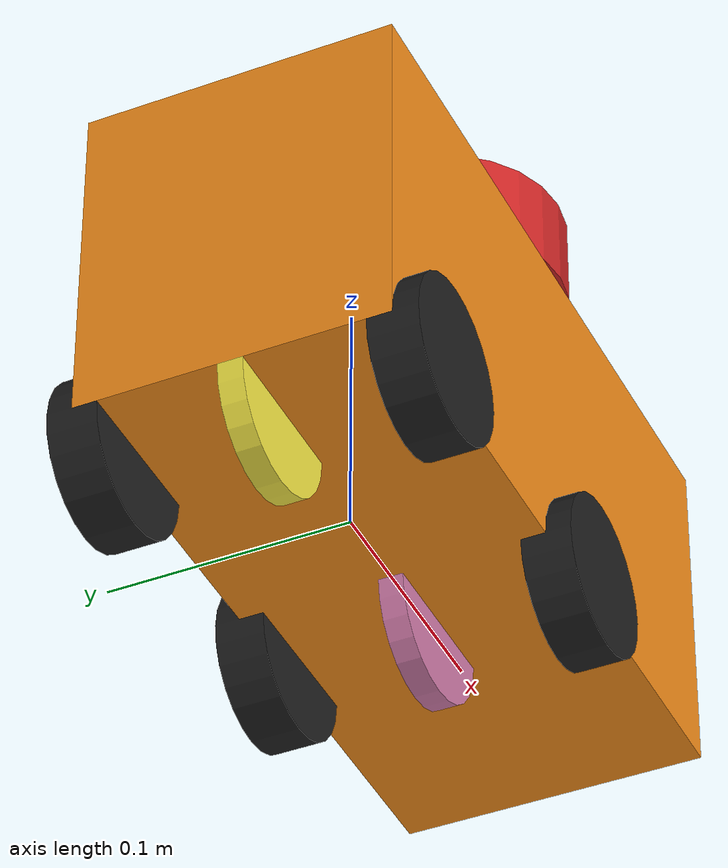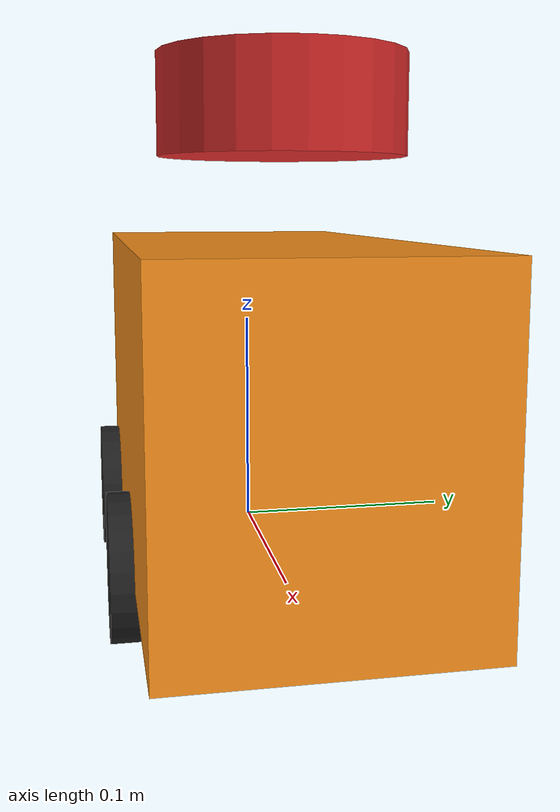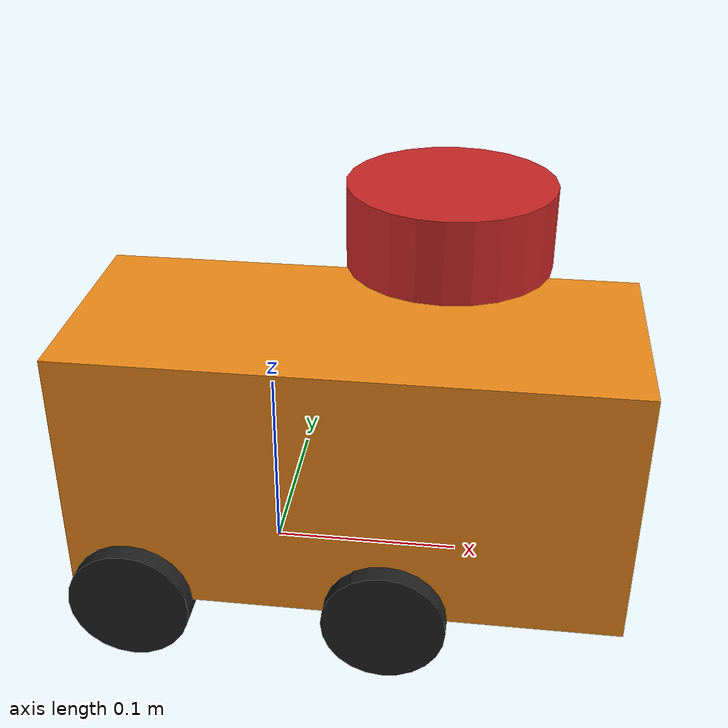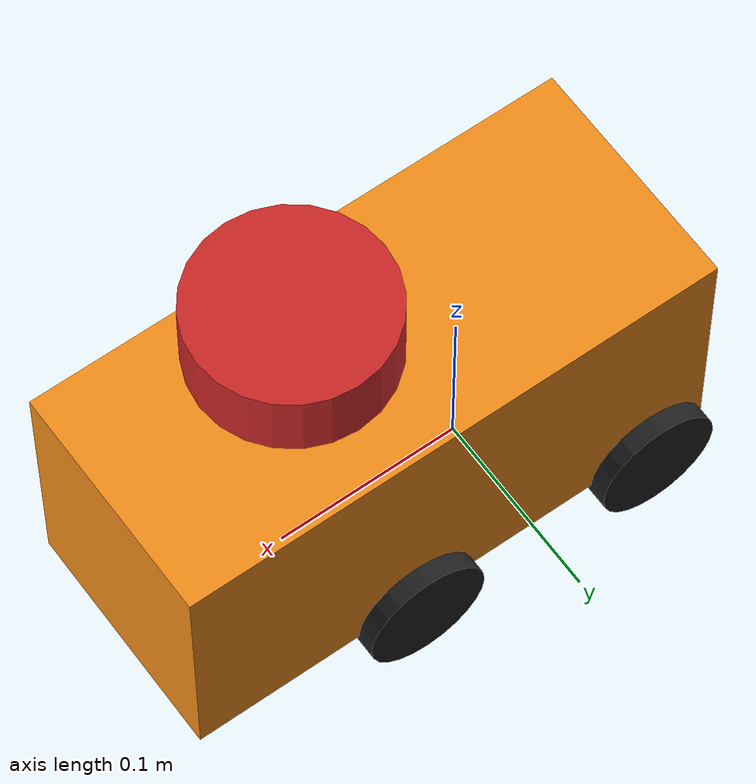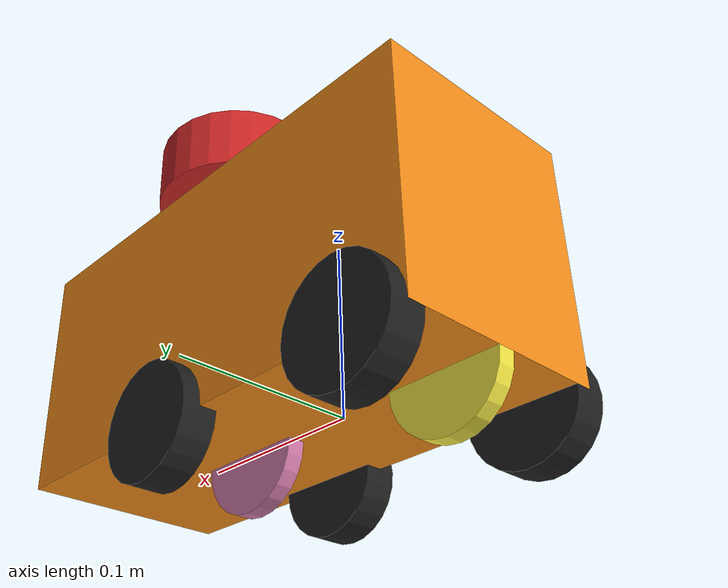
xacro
<?xml version="1.0"?>
<!-- 4 Wheel Robot with front steering and rear drive -->
<robot xmlns:xacro="http://www.ros.org/wiki/xacro" name="doteacher_robot">

  <xacro:arg name="prefix" default="" />

  <xacro:include filename="$(find doteacher)/urdf/doteacher_description.urdf.xacro" />

  <!-- Import Rviz colors -->
  <xacro:include filename="$(find doteacher)/urdf/doteacher.materials.xacro" />
  doteacher

  <!-- Import ros2 control -->
  <xacro:include filename="$(find doteacher)/ros2_control/doteacher.ros2_control.xacro" />

  <xacro:doteacher prefix="$(arg prefix)" />

  <xacro:doteacher_ros2_control name="CarlikeBot" prefix="$(arg prefix)" />

    <!-- Import Gazebo control -->

</robot>

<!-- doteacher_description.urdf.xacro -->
<robot xmlns:xacro="http://www.ros.org/wiki/xacro">

  <xacro:macro name="doteacher" params="prefix">

    <!-- Constants for robot dimensions -->
    <xacro:property name="PI" value="3.1415926535897931" />
    <xacro:property name="base_mass" value="1.5" /> <!-- arbitrary value for base mass -->
    <xacro:property name="base_width" value="0.125" />
    <xacro:property name="base_length" value="0.29" />
    <xacro:property name="base_height" value="0.14" />
    <xacro:property name="wheelbase" value="0.135" />
    <xacro:property name="wheel_mass" value="0.05" /> <!-- arbitrary value for wheel mass -->
    <xacro:property name="wheel_len" value="0.02" />
    <xacro:property name="wheel_radius" value="0.0325" />

    <xacro:property name="wheel_friction" value="0.5" />

    <!-- Base Link -->
    <link name="${prefix}base_link" />

    <!-- Base Footprint Link -->
    <link name="${prefix}base_footprint" />

    <joint name="${prefix}base_footprint_joint" type="fixed">
      <parent link="${prefix}base_link" />
      <child link="${prefix}base_footprint" />
      <origin xyz="0 0 -${wheel_radius}" rpy="0 0 0" />
      <axis xyz="0 0 1" />
    </joint>

    <!-- Chassis -->
    <link name="${prefix}chassis_link">
      <collision>
        <origin xyz="${base_length/2-0.01} 0 ${base_height/2}" rpy="0 0 0" />
        <geometry>
          <box size="${base_length} ${base_width} ${base_height}" />
        </geometry>
      </collision>

      <visual>
        <origin xyz="${base_length/2-0.01} 0 ${base_height/2}" rpy="0 0 0" />
        <geometry>
          <box size="${base_length} ${base_width} ${base_height}" />
        </geometry>
        <material name="orange" />
      </visual>

      <inertial>
        <origin xyz="0 0 0" rpy="0 0 0" />
        <mass value="${base_mass}" />
        <inertia
          ixx="0.021367" ixy="0.0" ixz="0.0"
          iyy="0.016621" iyz="0.0"
          izz="0.009954" />
      </inertial>
    </link>

    <joint name="${prefix}chassis_joint" type="fixed">
      <parent link="${prefix}base_link" />
      <child link="${prefix}chassis_link" />
      <origin xyz="-0.090 0 0" rpy="0 0 0" />
      <axis xyz="0 0 1" />
      <dynamics damping="0.2" />
    </joint>

    <!-- rear wheels -->
    <!-- virtual rear wheel -->

    <link name="${prefix}virtual_rear_wheel">
      <visual>
        <origin xyz="0 0 0" rpy="${PI/2} 0 ${PI/2}" />
        <geometry>
          <cylinder length="0.01" radius="${wheel_radius}" />
        </geometry>
        <material name="invisible" />
      </visual>
    </link>

    <joint name="${prefix}virtual_rear_wheel_joint" type="continuous">
      <parent link="${prefix}base_link" />
      <child link="${prefix}virtual_rear_wheel" />
      <origin xyz="-${wheelbase/2} 0 0" rpy="0 0 ${PI/2}" />
      <axis xyz="1 0 0" />
      <limit effort="100.0" velocity="100.0" />
      <dynamics damping="0.2" />
    </joint>

    <!-- rear right wheel -->
    <link name="${prefix}rear_right_wheel">
      <collision>
        <origin xyz="0 0 0" rpy="${PI/2} 0 ${PI/2}" />
        <geometry>
          <cylinder length="${wheel_len}" radius="${wheel_radius}" />
        </geometry>
      </collision>

      <visual>
        <origin xyz="0 0 0" rpy="${PI/2} 0 ${PI/2}" />
        <geometry>
          <cylinder length="${wheel_len}" radius="${wheel_radius}" />
        </geometry>
        <material name="black" />
      </visual>

      <inertial>
        <origin xyz="0 0 0" rpy="${PI/2} 0 ${PI/2}" />
        <mass value="${wheel_mass}" />
        <inertia
          ixx="0.000270" ixy="0.0" ixz="0.0"
          iyy="0.000270" iyz="0.0"
          izz="0.000426" />
      </inertial>
    </link>

    <joint name="${prefix}rear_right_wheel_joint" type="continuous">
      <parent link="${prefix}base_link" />
      <child link="${prefix}rear_right_wheel" />
      <origin xyz="-${wheelbase/2} ${base_width/2} 0" rpy="0 0 ${PI/2}" />
      <axis xyz="1 0 0" />
      <limit effort="100.0" velocity="100.0" />
      <dynamics damping="0.2" />
      <mimic joint="${prefix}virtual_rear_wheel_joint" multiplier="1.0" offset="0.0" />
    </joint>

    <!-- rear left wheel -->
    <link name="${prefix}rear_left_wheel">
      <collision>
        <origin xyz="0 0 0" rpy="${PI/2} 0 ${PI/2}" />
        <geometry>
          <cylinder length="${wheel_len}" radius="${wheel_radius}" />
        </geometry>
      </collision>

      <visual>
        <origin xyz="0 0 0" rpy="${PI/2} 0 ${PI/2}" />
        <geometry>
          <cylinder length="${wheel_len}" radius="${wheel_radius}" />
        </geometry>
        <material name="black" />
      </visual>

      <inertial>
        <origin xyz="0 0 0" rpy="${PI/2} 0 ${PI/2}" />
        <mass value="${wheel_mass}" />
        <inertia
          ixx="0.000270" ixy="0.0" ixz="0.0"
          iyy="0.000270" iyz="0.0"
          izz="0.000426" />
      </inertial>

    </link>

    <joint name="${prefix}rear_left_wheel_joint" type="continuous">
      <parent link="${prefix}base_link" />
      <child link="${prefix}rear_left_wheel" />
      <origin xyz="-${wheelbase/2} -${base_width/2} 0" rpy="0 0 ${PI/2}" />
      <axis xyz="1 0 0" />
      <limit effort="100.0" velocity="100.0" />
      <dynamics damping="0.2" />
      <mimic joint="${prefix}virtual_rear_wheel_joint" multiplier="1.0" offset="0.0" />
    </joint>

    <!-- front wheels -->

    <link name="${prefix}virtual_front_wheel">
      <visual>
        <origin xyz="0 0 0" rpy="${PI/2} 0 ${PI/2}" />
        <geometry>
          <cylinder length="0.01" radius="${wheel_radius}" />
        </geometry>
        <material name="invisible" />
      </visual>
    </link>

    <joint name="${prefix}virtual_front_wheel_joint" type="revolute">
      <parent link="${prefix}base_link" />
      <child link="${prefix}virtual_front_wheel" />
      <origin xyz="${wheelbase/2} 0 0" rpy="0 0 ${PI/2}" />
      <axis xyz="0 0 1" />
      <limit lower="-0.4" upper="0.4" effort="100.0" velocity="0.0" />
      <dynamics damping="0.2" />
    </joint>

    <!-- front right wheel -->

    <link name="${prefix}front_right_wheel">

      <collision>
        <origin xyz="0 0 0" rpy="${PI/2} 0 ${PI/2}" />
        <geometry>
          <cylinder length="${wheel_len}" radius="${wheel_radius}" />
        </geometry>
      </collision>

      <visual>
        <origin xyz="0 0 0" rpy="${PI/2} 0 ${PI/2}" />
        <geometry>
          <cylinder length="${wheel_len}" radius="${wheel_radius}" />
        </geometry>
        <material name="black" />
      </visual>

      <inertial>
        <origin xyz="0 0 0" rpy="${PI/2} 0 ${PI/2}" />
        <mass value="${wheel_mass}" />
        <inertia
          ixx="0.000270" ixy="0.0" ixz="0.0"
          iyy="0.000270" iyz="0.0"
          izz="0.000426" />
      </inertial>
    </link>

    <joint name="${prefix}front_right_wheel_joint" type="revolute">
      <parent link="${prefix}base_link" />
      <child link="${prefix}front_right_wheel" />
      <origin xyz="${wheelbase/2} ${base_width/2} 0" rpy="0 0 ${PI/2}" />
      <axis xyz="0 0 1" />
      <limit lower="-0.4" upper="0.4" effort="100.0" velocity="0.0" />
      <dynamics damping="0.2" />
      <mimic joint="${prefix}virtual_front_wheel_joint" multiplier="1.0" offset="0.0" />
    </joint>

    <!-- front left wheel -->

    <link name="${prefix}front_left_wheel">
      <collision>
        <origin xyz="0 0 0" rpy="${PI/2} 0 ${PI/2}" />
        <geometry>
          <cylinder length="${wheel_len}" radius="${wheel_radius}" />
        </geometry>
      </collision>

      <visual>
        <origin xyz="0 0 0" rpy="${PI/2} 0 ${PI/2}" />
        <geometry>
          <cylinder length="${wheel_len}" radius="${wheel_radius}" />
        </geometry>
        <material name="black" />
      </visual>

      <inertial>
        <origin xyz="0 0 0" rpy="${PI/2} 0 ${PI/2}" />
        <mass value="${wheel_mass}" />
        <inertia
          ixx="0.000270" ixy="0.0" ixz="0.0"
          iyy="0.000270" iyz="0.0"
          izz="0.000426" />
      </inertial>

    </link>

    <joint name="${prefix}front_left_wheel_joint" type="revolute">
      <parent link="${prefix}base_link" />
      <child link="${prefix}front_left_wheel" />
      <origin xyz="${wheelbase/2} -${base_width/2} 0" rpy="0 0 ${PI/2}" />
      <axis xyz="0 0 1" />
      <limit lower="-0.4" upper="0.4" effort="100.0" velocity="0.0" />
      <dynamics damping="0.2" />
      <mimic joint="${prefix}virtual_front_wheel_joint" multiplier="1.0" offset="0.0" />
    </joint>

    <!-- lidar -->

    <joint name="${prefix}laser_joint" type="fixed">
      <parent link="${prefix}chassis_link" />
      <child link="${prefix}laser_frame" />
      <origin xyz="0.180 0 0.195" rpy="0 0 0" />
    </joint>

    <link name="${prefix}laser_frame">
      <visual>
        <geometry>
          <cylinder radius="0.05" length="0.04" />
        </geometry>
        <material name="red" />
      </visual>

      <collision>
        <geometry>
          <cylinder radius="0.05" length="0.04" />
        </geometry>
      </collision>

      <inertial>
        <origin xyz="0 0 0" rpy="0 0 0" />
        <mass value="0.05" />
        <inertia ixx="0.0001" ixy="0.000" ixz="0.000"
          iyy="0.0001" iyz="0.000" izz="0.0001" />
      </inertial>
    </link>

    <!-- camera -->

    <joint name="${prefix}camera_joint" type="fixed">
      <parent link="${prefix}chassis_link" />
      <child link="${prefix}camera_link" />
      <origin xyz="0.25 0 0.085" rpy="0 0 0" />
    </joint>

    <link name="${prefix}camera_link">
      <visual>
        <geometry>
          <box size="0.010 0.03 0.03" />
        </geometry>
        <material name="red" />
      </visual>
      <collision>
        <geometry>
          <box size="0.010 0.03 0.03" />
        </geometry>
      </collision>
      <inertial>
        <origin xyz="0 0 0" rpy="0 0 0" />
        <mass value="0.01" />
        <inertia ixx="0.0001" ixy="0.000" ixz="0.000"
          iyy="0.0001" iyz="0.000" izz="0.0001" />
      </inertial>
    </link>

    <joint name="${prefix}camera_optical_joint" type="fixed">
      <parent link="${prefix}camera_link" />
      <child link="${prefix}camera_link_optical" />
      <origin xyz="0 0 0" rpy="-${PI/2} 0 -${PI/2}" />
    </joint>

    <link name="${prefix}camera_link_optical">
      <inertial>
        <origin xyz="0 0 0" rpy="0 0 0" />
        <mass value="0.000001" />
        <inertia ixx="0.0001" ixy="0.000" ixz="0.000"
          iyy="0.0001" iyz="0.000" izz="0.0001" />
      </inertial>
    </link>

    <gazebo reference="base_link">
    </gazebo>

    <gazebo reference="${prefix}chassis_link">
      <damping>
        <linear>0.2</linear>
        <angular>0.05</angular>
      </damping>
      <material>Gazebo/Orange</material>
    </gazebo>

    <gazebo reference="${prefix}rear_right_wheel">
      <mu1>0.5</mu1>
      <mu2>0.5</mu2>
      <kp>1000000.0</kp>
      <kd>1.0</kd>
      <material>Gazebo/Black</material>
    </gazebo>

    <gazebo reference="${prefix}rear_left_wheel">
      <mu1>0.5</mu1>
      <mu2>0.5</mu2>
      <kp>1000000.0</kp>
      <kd>1.0</kd>
      <material>Gazebo/Black</material>
    </gazebo>

    <gazebo reference="${prefix}front_right_wheel">
      <mu1>0.5</mu1>
      <mu2>0.5</mu2>
      <kp>1000000.0</kp>
      <kd>1.0</kd>
      <material>Gazebo/Black</material>
    </gazebo>

    <gazebo reference="${prefix}front_left_wheel">
      <mu1>0.5</mu1>
      <mu2>0.5</mu2>
      <kp>1000000.0</kp>
      <kd>1.0</kd>
      <material>Gazebo/Black</material>
    </gazebo>

    <gazebo reference="${prefix}laser_frame">
      <sensor name="laser" type="ray">
        <pose>0 0 0 0 0 0</pose>
        <visualize>false</visualize>
        <update_rate>5</update_rate>
        <ray>
          <scan>
            <horizontal>
              <samples>360</samples>
              <resolution>0.500000</resolution>
              <min_angle>0.000000</min_angle>
              <max_angle>6.280000</max_angle>
            </horizontal>
          </scan>
          <range>
            <min>0.120000</min>
            <max>10</max>
            <resolution>0.015000</resolution>
          </range>
          <noise>
            <type>gaussian</type>
            <mean>0.0</mean>
            <stddev>0.01</stddev>
          </noise>
        </ray>
        <plugin name="laser_controller" filename="libgazebo_ros_ray_sensor.so">
          <ros>
            <remapping>~/out:=scan</remapping>
          </ros>
          <output_type>sensor_msgs/LaserScan</output_type>
          <frame_name>laser_frame</frame_name>
        </plugin>
      </sensor>
      <material>Gazebo/Red</material>
    </gazebo>

    <gazebo reference="${prefix}camera_link">
      <sensor name="camera" type="camera">
        <always_on>true</always_on>
        <pose>0 0 0 0 0 0</pose>
        <visualize>true</visualize>
        <update_rate>10</update_rate>
        <camera>
          <horizontal_fov>1.089</horizontal_fov>
          <image>
            <format>R8G8B8</format>
            <width>640</width>
            <height>480</height>
          </image>
          <clip>
            <near>0.05</near>
            <far>8.0</far>
          </clip>
        </camera>
        <plugin name="camera_controller" filename="libgazebo_ros_camera.so">
          <frame_name>camera_link_optical</frame_name>
        </plugin>
      </sensor>
      <material>Gazebo/Red</material>
    </gazebo>

  </xacro:macro>

</robot>
